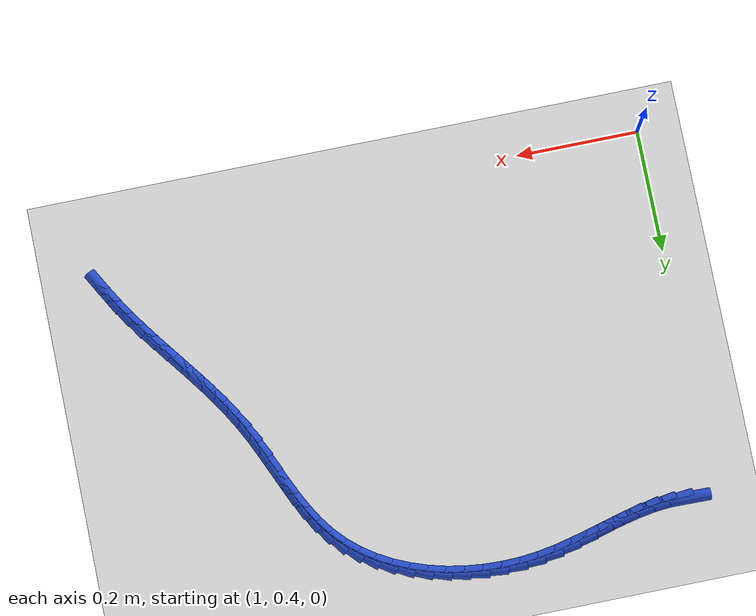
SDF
<sdf version="1.6">
 <world name="default">
  <model name="ground_plane">
   <static>1</static>
   <link name="link">
    <collision name="collision">
     <geometry><plane><normal>0 0 1</normal><size>100 100</size></plane></geometry>
     <surface><friction><ode><mu>100</mu><mu2>50</mu2></ode></friction></surface>
    </collision>
    <visual name="visual">
     <cast_shadows>0</cast_shadows>
     <geometry><plane><normal>0 0 1</normal><size>100 100</size></plane></geometry>
     <material>
      <script><uri>file://media/materials/scripts/gazebo.material</uri><name>Gazebo/WhiteGlow</name></script>
     </material>
    </visual>
   </link>
  </model>
  <model name="line">
   <link name="link_58">
    <pose>1.0472367196017982 0.9995459429476409 0.01 0 1.57 -0.0137700161365197</pose>
    <collision name="collision">
     <geometry><cylinder><radius>0.01</radius><length>0.08</length></cylinder></geometry>
    </collision>
    <visual name="visual">
     <material>
      <script><name>Gazebo/Blue</name><uri>file://media/materials/scripts/gazebo.material</uri></script>
     </material>
     <geometry><cylinder><radius>0.01</radius><length>0.08</length></cylinder></geometry>
    </visual>
   </link>
   <link name="link_59">
    <pose>1.0742494673558012 0.9991739534634893 0.01 0 1.57 0.09003630734448476</pose>
    <collision name="collision">
     <geometry><cylinder><radius>0.01</radius><length>0.08</length></cylinder></geometry>
    </collision>
    <visual name="visual">
     <material>
      <script><name>Gazebo/Blue</name><uri>file://media/materials/scripts/gazebo.material</uri></script>
     </material>
     <geometry><cylinder><radius>0.01</radius><length>0.08</length></cylinder></geometry>
    </visual>
   </link>
   <link name="link_60">
    <pose>1.1013080691349342 1.0016168146677393 0.01 0 1.57 0.16924322976613373</pose>
    <collision name="collision">
     <geometry><cylinder><radius>0.01</radius><length>0.08</length></cylinder></geometry>
    </collision>
    <visual name="visual">
     <material>
      <script><name>Gazebo/Blue</name><uri>file://media/materials/scripts/gazebo.material</uri></script>
     </material>
     <geometry><cylinder><radius>0.01</radius><length>0.08</length></cylinder></geometry>
    </visual>
   </link>
   <link name="link_61">
    <pose>1.128480011442463 1.006259897856595 0.01 0 1.57 0.22389852214442468</pose>
    <collision name="collision">
     <geometry><cylinder><radius>0.01</radius><length>0.08</length></cylinder></geometry>
    </collision>
    <visual name="visual">
     <material>
      <script><name>Gazebo/Blue</name><uri>file://media/materials/scripts/gazebo.material</uri></script>
     </material>
     <geometry><cylinder><radius>0.01</radius><length>0.08</length></cylinder></geometry>
    </visual>
   </link>
   <link name="link_62">
    <pose>1.1558327807816549 1.0124885743262615 0.01 0 1.57 0.2551606315116729</pose>
    <collision name="collision">
     <geometry><cylinder><radius>0.01</radius><length>0.08</length></cylinder></geometry>
    </collision>
    <visual name="visual">
     <material>
      <script><name>Gazebo/Blue</name><uri>file://media/materials/scripts/gazebo.material</uri></script>
     </material>
     <geometry><cylinder><radius>0.01</radius><length>0.08</length></cylinder></geometry>
    </visual>
   </link>
   <link name="link_63">
    <pose>1.1834338636557762 1.019688215372942 0.01 0 1.57 0.26432666683179096</pose>
    <collision name="collision">
     <geometry><cylinder><radius>0.01</radius><length>0.08</length></cylinder></geometry>
    </collision>
    <visual name="visual">
     <material>
      <script><name>Gazebo/Blue</name><uri>file://media/materials/scripts/gazebo.material</uri></script>
     </material>
     <geometry><cylinder><radius>0.01</radius><length>0.08</length></cylinder></geometry>
    </visual>
   </link>
   <link name="link_64">
    <pose>1.2113507465680937 1.0272441922928417 0.01 0 1.57 0.25236922574529896</pose>
    <collision name="collision">
     <geometry><cylinder><radius>0.01</radius><length>0.08</length></cylinder></geometry>
    </collision>
    <visual name="visual">
     <material>
      <script><name>Gazebo/Blue</name><uri>file://media/materials/scripts/gazebo.material</uri></script>
     </material>
     <geometry><cylinder><radius>0.01</radius><length>0.08</length></cylinder></geometry>
    </visual>
   </link>
   <link name="link_65">
    <pose>1.2396509160218743 1.0345418763821645 0.01 0 1.57 0.21985071459625496</pose>
    <collision name="collision">
     <geometry><cylinder><radius>0.01</radius><length>0.08</length></cylinder></geometry>
    </collision>
    <visual name="visual">
     <material>
      <script><name>Gazebo/Blue</name><uri>file://media/materials/scripts/gazebo.material</uri></script>
     </material>
     <geometry><cylinder><radius>0.01</radius><length>0.08</length></cylinder></geometry>
    </visual>
   </link>
   <link name="link_66">
    <pose>1.2684018585203851 1.0409666389371148 0.01 0 1.57 0.16710972225296455</pose>
    <collision name="collision">
     <geometry><cylinder><radius>0.01</radius><length>0.08</length></cylinder></geometry>
    </collision>
    <visual name="visual">
     <material>
      <script><name>Gazebo/Blue</name><uri>file://media/materials/scripts/gazebo.material</uri></script>
     </material>
     <geometry><cylinder><radius>0.01</radius><length>0.08</length></cylinder></geometry>
    </visual>
   </link>
   <link name="link_67">
    <pose>1.2976710605668917 1.0459038512538972 0.01 0 1.57 0.09817600184497795</pose>
    <collision name="collision">
     <geometry><cylinder><radius>0.01</radius><length>0.08</length></cylinder></geometry>
    </collision>
    <visual name="visual">
     <material>
      <script><name>Gazebo/Blue</name><uri>file://media/materials/scripts/gazebo.material</uri></script>
     </material>
     <geometry><cylinder><radius>0.01</radius><length>0.08</length></cylinder></geometry>
    </visual>
   </link>
   <link name="link_68">
    <pose>1.327471639817127 1.0488389891781336 0.01 0 1.57 0.027529362898164333</pose>
    <collision name="collision">
     <geometry><cylinder><radius>0.01</radius><length>0.08</length></cylinder></geometry>
    </collision>
    <visual name="visual">
     <material>
      <script><name>Gazebo/Blue</name><uri>file://media/materials/scripts/gazebo.material</uri></script>
     </material>
     <geometry><cylinder><radius>0.01</radius><length>0.08</length></cylinder></geometry>
    </visual>
   </link>
   <link name="link_69">
    <pose>1.3575935418826721 1.0496684354982053 0.01 0 1.57 -0.0422087703946968</pose>
    <collision name="collision">
     <geometry><cylinder><radius>0.01</radius><length>0.08</length></cylinder></geometry>
    </collision>
    <visual name="visual">
     <material>
      <script><name>Gazebo/Blue</name><uri>file://media/materials/scripts/gazebo.material</uri></script>
     </material>
     <geometry><cylinder><radius>0.01</radius><length>0.08</length></cylinder></geometry>
    </visual>
   </link>
   <link name="link_70">
    <pose>1.3877694580930022 1.0483939902473436 0.01 0 1.57 -0.11221819504109587</pose>
    <collision name="collision">
     <geometry><cylinder><radius>0.01</radius><length>0.08</length></cylinder></geometry>
    </collision>
    <visual name="visual">
     <material>
      <script><name>Gazebo/Blue</name><uri>file://media/materials/scripts/gazebo.material</uri></script>
     </material>
     <geometry><cylinder><radius>0.01</radius><length>0.08</length></cylinder></geometry>
    </visual>
   </link>
   <link name="link_71">
    <pose>1.417732079741866 1.0450174535245544 0.01 0 1.57 -0.18367465913512412</pose>
    <collision name="collision">
     <geometry><cylinder><radius>0.01</radius><length>0.08</length></cylinder></geometry>
    </collision>
    <visual name="visual">
     <material>
      <script><name>Gazebo/Blue</name><uri>file://media/materials/scripts/gazebo.material</uri></script>
     </material>
     <geometry><cylinder><radius>0.01</radius><length>0.08</length></cylinder></geometry>
    </visual>
   </link>
   <link name="link_72">
    <pose>1.4472140981230128 1.0395406254288426 0.01 0 1.57 -0.257769972222728</pose>
    <collision name="collision">
     <geometry><cylinder><radius>0.01</radius><length>0.08</length></cylinder></geometry>
    </collision>
    <visual name="visual">
     <material>
      <script><name>Gazebo/Blue</name><uri>file://media/materials/scripts/gazebo.material</uri></script>
     </material>
     <geometry><cylinder><radius>0.01</radius><length>0.08</length></cylinder></geometry>
    </visual>
   </link>
   <link name="link_73">
    <pose>1.4759482045301935 1.0319653060592149 0.01 0 1.57 -0.3357231936835527</pose>
    <collision name="collision">
     <geometry><cylinder><radius>0.01</radius><length>0.08</length></cylinder></geometry>
    </collision>
    <visual name="visual">
     <material>
      <script><name>Gazebo/Blue</name><uri>file://media/materials/scripts/gazebo.material</uri></script>
     </material>
     <geometry><cylinder><radius>0.01</radius><length>0.08</length></cylinder></geometry>
    </visual>
   </link>
   <link name="link_74">
    <pose>1.5036670902571572 1.0222932955146762 0.01 0 1.57 -0.41877412627295907</pose>
    <collision name="collision">
     <geometry><cylinder><radius>0.01</radius><length>0.08</length></cylinder></geometry>
    </collision>
    <visual name="visual">
     <material>
      <script><name>Gazebo/Blue</name><uri>file://media/materials/scripts/gazebo.material</uri></script>
     </material>
     <geometry><cylinder><radius>0.01</radius><length>0.08</length></cylinder></geometry>
    </visual>
   </link>
   <link name="link_75">
    <pose>1.5301034465976533 1.0105263938942328 0.01 0 1.57 -0.5081464567358087</pose>
    <collision name="collision">
     <geometry><cylinder><radius>0.01</radius><length>0.08</length></cylinder></geometry>
    </collision>
    <visual name="visual">
     <material>
      <script><name>Gazebo/Blue</name><uri>file://media/materials/scripts/gazebo.material</uri></script>
     </material>
     <geometry><cylinder><radius>0.01</radius><length>0.08</length></cylinder></geometry>
    </visual>
   </link>
   <link name="link_76">
    <pose>1.5549899648454322 0.9966664012968901 0.01 0 1.57 -0.6049636509581648</pose>
    <collision name="collision">
     <geometry><cylinder><radius>0.01</radius><length>0.08</length></cylinder></geometry>
    </collision>
    <visual name="visual">
     <material>
      <script><name>Gazebo/Blue</name><uri>file://media/materials/scripts/gazebo.material</uri></script>
     </material>
     <geometry><cylinder><radius>0.01</radius><length>0.08</length></cylinder></geometry>
    </visual>
   </link>
   <link name="link_77">
    <pose>1.5780593362942432 0.9807151178216542 0.01 0 1.57 -0.7100996798038678</pose>
    <collision name="collision">
     <geometry><cylinder><radius>0.01</radius><length>0.08</length></cylinder></geometry>
    </collision>
    <visual name="visual">
     <material>
      <script><name>Gazebo/Blue</name><uri>file://media/materials/scripts/gazebo.material</uri></script>
     </material>
     <geometry><cylinder><radius>0.01</radius><length>0.08</length></cylinder></geometry>
    </visual>
   </link>
   <link name="link_78">
    <pose>1.5990442522378365 0.9626743435675302 0.01 0 1.57 -0.8238287780920265</pose>
    <collision name="collision">
     <geometry><cylinder><radius>0.01</radius><length>0.08</length></cylinder></geometry>
    </collision>
    <visual name="visual">
     <material>
      <script><name>Gazebo/Blue</name><uri>file://media/materials/scripts/gazebo.material</uri></script>
     </material>
     <geometry><cylinder><radius>0.01</radius><length>0.08</length></cylinder></geometry>
    </visual>
   </link>
   <link name="link_79">
    <pose>1.617680665742065 0.9425475004676633 0.01 0 1.57 -0.935339789499344</pose>
    <collision name="collision">
     <geometry><cylinder><radius>0.01</radius><length>0.08</length></cylinder></geometry>
    </collision>
    <visual name="visual">
     <material>
      <script><name>Gazebo/Blue</name><uri>file://media/materials/scripts/gazebo.material</uri></script>
     </material>
     <geometry><cylinder><radius>0.01</radius><length>0.08</length></cylinder></geometry>
    </visual>
   </link>
   <link name="link_80">
    <pose>1.6339648318538886 0.9204674390682246 0.01 0 1.57 -1.0252167294396548</pose>
    <collision name="collision">
     <geometry><cylinder><radius>0.01</radius><length>0.08</length></cylinder></geometry>
    </collision>
    <visual name="visual">
     <material>
      <script><name>Gazebo/Blue</name><uri>file://media/materials/scripts/gazebo.material</uri></script>
     </material>
     <geometry><cylinder><radius>0.01</radius><length>0.08</length></cylinder></geometry>
    </visual>
   </link>
   <link name="link_81">
    <pose>1.648338786276453 0.8967886631344606 0.01 0 1.57 -1.0912486932520715</pose>
    <collision name="collision">
     <geometry><cylinder><radius>0.01</radius><length>0.08</length></cylinder></geometry>
    </collision>
    <visual name="visual">
     <material>
      <script><name>Gazebo/Blue</name><uri>file://media/materials/scripts/gazebo.material</uri></script>
     </material>
     <geometry><cylinder><radius>0.01</radius><length>0.08</length></cylinder></geometry>
    </visual>
   </link>
   <link name="link_82">
    <pose>1.6612883221566155 0.8718874337199243 0.01 0 1.57 -1.1343143879225035</pose>
    <collision name="collision">
     <geometry><cylinder><radius>0.01</radius><length>0.08</length></cylinder></geometry>
    </collision>
    <visual name="visual">
     <material>
      <script><name>Gazebo/Blue</name><uri>file://media/materials/scripts/gazebo.material</uri></script>
     </material>
     <geometry><cylinder><radius>0.01</radius><length>0.08</length></cylinder></geometry>
    </visual>
   </link>
   <link name="link_83">
    <pose>1.6732992326412335 0.8461400118781668 0.01 0 1.57 -1.1555724958955138</pose>
    <collision name="collision">
     <geometry><cylinder><radius>0.01</radius><length>0.08</length></cylinder></geometry>
    </collision>
    <visual name="visual">
     <material>
      <script><name>Gazebo/Blue</name><uri>file://media/materials/scripts/gazebo.material</uri></script>
     </material>
     <geometry><cylinder><radius>0.01</radius><length>0.08</length></cylinder></geometry>
    </visual>
   </link>
   <link name="link_84">
    <pose>1.6848573108771638 0.8199226586627401 0.01 0 1.57 -1.1558377397203214</pose>
    <collision name="collision">
     <geometry><cylinder><radius>0.01</radius><length>0.08</length></cylinder></geometry>
    </collision>
    <visual name="visual">
     <material>
      <script><name>Gazebo/Blue</name><uri>file://media/materials/scripts/gazebo.material</uri></script>
     </material>
     <geometry><cylinder><radius>0.01</radius><length>0.08</length></cylinder></geometry>
    </visual>
   </link>
   <link name="link_85">
    <pose>1.6964483500112633 0.7936116351271951 0.01 0 1.57 -1.1353310723632597</pose>
    <collision name="collision">
     <geometry><cylinder><radius>0.01</radius><length>0.08</length></cylinder></geometry>
    </collision>
    <visual name="visual">
     <material>
      <script><name>Gazebo/Blue</name><uri>file://media/materials/scripts/gazebo.material</uri></script>
     </material>
     <geometry><cylinder><radius>0.01</radius><length>0.08</length></cylinder></geometry>
    </visual>
   </link>
   <link name="link_86">
    <pose>1.7085581431903898 0.7675832023250849 0.01 0 1.57 -1.0939124632451513</pose>
    <collision name="collision">
     <geometry><cylinder><radius>0.01</radius><length>0.08</length></cylinder></geometry>
    </collision>
    <visual name="visual">
     <material>
      <script><name>Gazebo/Blue</name><uri>file://media/materials/scripts/gazebo.material</uri></script>
     </material>
     <geometry><cylinder><radius>0.01</radius><length>0.08</length></cylinder></geometry>
    </visual>
   </link>
   <link name="link_87">
    <pose>1.7216674051672591 0.742209939202056 0.01 0 1.57 -1.0427474625729596</pose>
    <collision name="collision">
     <geometry><cylinder><radius>0.01</radius><length>0.08</length></cylinder></geometry>
    </collision>
    <visual name="visual">
     <material>
      <script><name>Gazebo/Blue</name><uri>file://media/materials/scripts/gazebo.material</uri></script>
     </material>
     <geometry><cylinder><radius>0.01</radius><length>0.08</length></cylinder></geometry>
    </visual>
   </link>
   <link name="link_88">
    <pose>1.7359836593981637 0.7176663463734511 0.01 0 1.57 -0.9993796351363602</pose>
    <collision name="collision">
     <geometry><cylinder><radius>0.01</radius><length>0.08</length></cylinder></geometry>
    </collision>
    <visual name="visual">
     <material>
      <script><name>Gazebo/Blue</name><uri>file://media/materials/scripts/gazebo.material</uri></script>
     </material>
     <geometry><cylinder><radius>0.01</radius><length>0.08</length></cylinder></geometry>
    </visual>
   </link>
   <link name="link_89">
    <pose>1.7513081720941728 0.6938323661803869 0.01 0 1.57 -0.9654794731695173</pose>
    <collision name="collision">
     <geometry><cylinder><radius>0.01</radius><length>0.08</length></cylinder></geometry>
    </collision>
    <visual name="visual">
     <material>
      <script><name>Gazebo/Blue</name><uri>file://media/materials/scripts/gazebo.material</uri></script>
     </material>
     <geometry><cylinder><radius>0.01</radius><length>0.08</length></cylinder></geometry>
    </visual>
   </link>
   <link name="link_90">
    <pose>1.7674091971907762 0.6705640052950498 0.01 0 1.57 -0.9411421906112344</pose>
    <collision name="collision">
     <geometry><cylinder><radius>0.01</radius><length>0.08</length></cylinder></geometry>
    </collision>
    <visual name="visual">
     <material>
      <script><name>Gazebo/Blue</name><uri>file://media/materials/scripts/gazebo.material</uri></script>
     </material>
     <geometry><cylinder><radius>0.01</radius><length>0.08</length></cylinder></geometry>
    </visual>
   </link>
   <link name="link_91">
    <pose>1.7840549886234638 0.6477172703896249 0.01 0 1.57 -0.9263888244902622</pose>
    <collision name="collision">
     <geometry><cylinder><radius>0.01</radius><length>0.08</length></cylinder></geometry>
    </collision>
    <visual name="visual">
     <material>
      <script><name>Gazebo/Blue</name><uri>file://media/materials/scripts/gazebo.material</uri></script>
     </material>
     <geometry><cylinder><radius>0.01</radius><length>0.08</length></cylinder></geometry>
    </visual>
   </link>
   <link name="link_92">
    <pose>1.8010138003277247 0.6251481681362973 0.01 0 1.57 -0.9212329461799128</pose>
    <collision name="collision">
     <geometry><cylinder><radius>0.01</radius><length>0.08</length></cylinder></geometry>
    </collision>
    <visual name="visual">
     <material>
      <script><name>Gazebo/Blue</name><uri>file://media/materials/scripts/gazebo.material</uri></script>
     </material>
     <geometry><cylinder><radius>0.01</radius><length>0.08</length></cylinder></geometry>
    </visual>
   </link>
   <link name="link_93">
    <pose>1.8180538862390492 0.602712705207252 0.01 0 1.57 -0.9257216906580479</pose>
    <collision name="collision">
     <geometry><cylinder><radius>0.01</radius><length>0.08</length></cylinder></geometry>
    </collision>
    <visual name="visual">
     <material>
      <script><name>Gazebo/Blue</name><uri>file://media/materials/scripts/gazebo.material</uri></script>
     </material>
     <geometry><cylinder><radius>0.01</radius><length>0.08</length></cylinder></geometry>
    </visual>
   </link>
   <link name="link_94">
    <pose>1.8349435002929266 0.5802668882746749 0.01 0 1.57 -0.9399508619841093</pose>
    <collision name="collision">
     <geometry><cylinder><radius>0.01</radius><length>0.08</length></cylinder></geometry>
    </collision>
    <visual name="visual">
     <material>
      <script><name>Gazebo/Blue</name><uri>file://media/materials/scripts/gazebo.material</uri></script>
     </material>
     <geometry><cylinder><radius>0.01</radius><length>0.08</length></cylinder></geometry>
    </visual>
   </link>
   <link name="link_95">
    <pose>1.8514508964248462 0.557666724010751 0.01 0 1.57 -0.9640534611817628</pose>
    <collision name="collision">
     <geometry><cylinder><radius>0.01</radius><length>0.08</length></cylinder></geometry>
    </collision>
    <visual name="visual">
     <material>
      <script><name>Gazebo/Blue</name><uri>file://media/materials/scripts/gazebo.material</uri></script>
     </material>
     <geometry><cylinder><radius>0.01</radius><length>0.08</length></cylinder></geometry>
    </visual>
   </link>
   <link name="link_96">
    <pose>1.8673443285702986 0.5347682190876655 0.01 0 1.57 -0.9979714987435228</pose>
    <collision name="collision">
     <geometry><cylinder><radius>0.01</radius><length>0.08</length></cylinder></geometry>
    </collision>
    <visual name="visual">
     <material>
      <script><name>Gazebo/Blue</name><uri>file://media/materials/scripts/gazebo.material</uri></script>
     </material>
     <geometry><cylinder><radius>0.01</radius><length>0.08</length></cylinder></geometry>
    </visual>
   </link>
   <link name="link_97">
    <pose>1.8823968271886122 0.5114296070449827 0.01 0 1.57 -1.0337381992008472</pose>
    <collision name="collision">
     <geometry><cylinder><radius>0.01</radius><length>0.08</length></cylinder></geometry>
    </collision>
    <visual name="visual">
     <material>
      <script><name>Gazebo/Blue</name><uri>file://media/materials/scripts/gazebo.material</uri></script>
     </material>
     <geometry><cylinder><radius>0.01</radius><length>0.08</length></cylinder></geometry>
    </visual>
   </link>
   <link name="link_98">
    <pose>1.8965838052516943 0.48760347435138196 0.01 0 1.57 -1.0603414648666631</pose>
    <collision name="collision">
     <geometry><cylinder><radius>0.01</radius><length>0.08</length></cylinder></geometry>
    </collision>
    <visual name="visual">
     <material>
      <script><name>Gazebo/Blue</name><uri>file://media/materials/scripts/gazebo.material</uri></script>
     </material>
     <geometry><cylinder><radius>0.01</radius><length>0.08</length></cylinder></geometry>
    </visual>
   </link>
  </model>
 </world>
</sdf>
